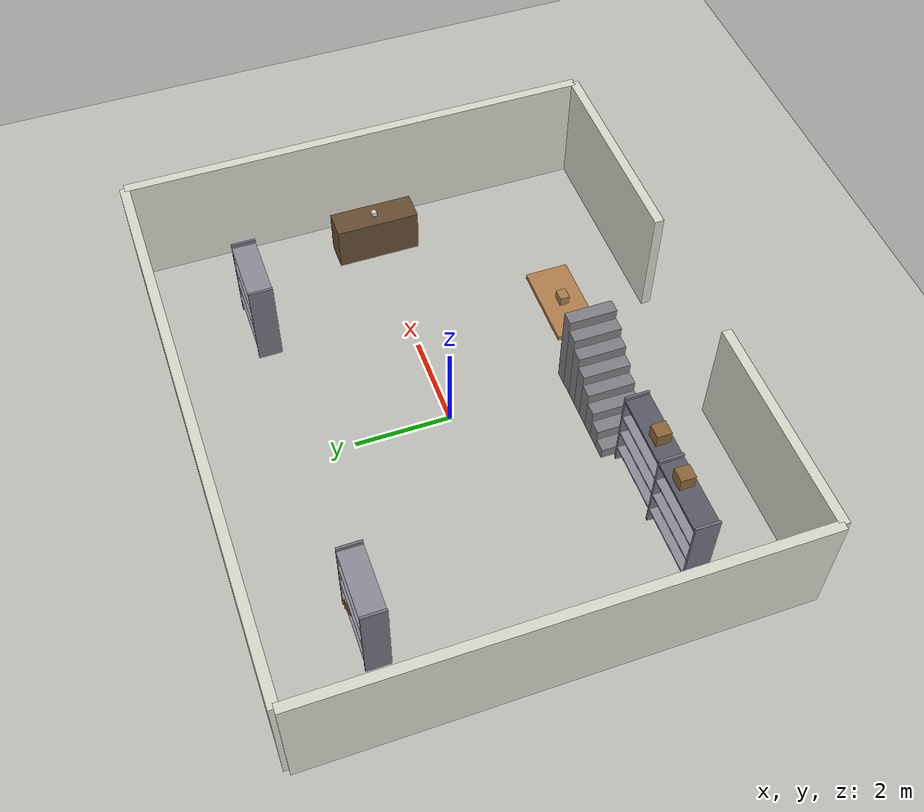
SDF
<?xml version='1.0'?>

<sdf version="1.7">
  <world name="store_inventory">

    <!-- ── Physics ─────────────────────────────────────────────────── -->
    <physics name="default_physics" type="dart">
      <max_step_size>0.001</max_step_size>
      <real_time_factor>1</real_time_factor>
      <real_time_update_rate>1000</real_time_update_rate>
    </physics>

    <plugin name="gz::sim::systems::Physics"          filename="ignition-gazebo-physics-system"/>
    <plugin name="gz::sim::systems::UserCommands"     filename="ignition-gazebo-user-commands-system"/>
    <plugin name="gz::sim::systems::SceneBroadcaster" filename="ignition-gazebo-scene-broadcaster-system"/>
    <plugin name="gz::sim::systems::Contact"          filename="ignition-gazebo-contact-system"/>

    <gravity>0 0 -9.8</gravity>
    <atmosphere type="adiabatic"/>

    <!-- ── Scene ───────────────────────────────────────────────────── -->
    <scene>
      <ambient>0.6 0.6 0.6 1</ambient>
      <background>0.85 0.85 0.85 1</background>
      <shadows>false</shadows>
    </scene>

    <!-- ── Sun / indoor light ─────────────────────────────────────── -->
    <light name="sun" type="directional">
      <cast_shadows>false</cast_shadows>
      <pose>0 0 10 0 0 0</pose>
      <diffuse>1 1 1 1</diffuse>
      <specular>0.2 0.2 0.2 1</specular>
      <direction>-0.5 0.5 -1</direction>
    </light>

    <!-- ═══════════════════════════════════════════════════════════════
         FLOOR
    ═══════════════════════════════════════════════════════════════════ -->
    <model name="ground">
      <static>true</static>
      <link name="link">
        <collision name="collision">
          <geometry>
            <plane><normal>0 0 1</normal><size>100 100</size></plane>
          </geometry>
          <surface>
            <friction><ode><mu>1.0</mu><mu2>1.0</mu2></ode></friction>
            <contact><ode><min_depth>0.001</min_depth></ode></contact>
          </surface>
        </collision>
        <visual name="visual">
          <geometry>
            <plane><normal>0 0 1</normal><size>12 10</size></plane>
          </geometry>
          <material>
            <ambient>0.75 0.75 0.72 1</ambient>
            <diffuse>0.75 0.75 0.72 1</diffuse>
          </material>
        </visual>
      </link>
    </model>

    <model name="wall_back">
      <static>true</static>
      <pose>0 5 1.25 0 0 0</pose>
      <link name="link">
        <collision name="collision"><geometry><box><size>12 0.2 2.5</size></box></geometry></collision>
        <visual name="visual">
          <geometry><box><size>12 0.2 2.5</size></box></geometry>
          <material><ambient>0.85 0.85 0.8 1</ambient><diffuse>0.85 0.85 0.8 1</diffuse></material>
        </visual>
      </link>
    </model>

    <model name="wall_left">
      <static>true</static>
      <pose>-6 0 1.25 0 0 0</pose>
      <link name="link">
        <collision name="collision"><geometry><box><size>0.2 10 2.5</size></box></geometry></collision>
        <visual name="visual">
          <geometry><box><size>0.2 10 2.5</size></box></geometry>
          <material><ambient>0.85 0.85 0.8 1</ambient><diffuse>0.85 0.85 0.8 1</diffuse></material>
        </visual>
      </link>
    </model>

    <model name="wall_right">
      <static>true</static>
      <pose>6 0 1.25 0 0 0</pose>
      <link name="link">
        <collision name="collision"><geometry><box><size>0.2 10 2.5</size></box></geometry></collision>
        <visual name="visual">
          <geometry><box><size>0.2 10 2.5</size></box></geometry>
          <material><ambient>0.85 0.85 0.8 1</ambient><diffuse>0.85 0.85 0.8 1</diffuse></material>
        </visual>
      </link>
    </model>

    <!-- front wall, split around a 3 m wide doorway at x∈[-1.5,1.5] -->
    <model name="wall_front_left">
      <static>true</static>
      <pose>-3.75 -5 1.25 0 0 0</pose>
      <link name="link">
        <collision name="collision"><geometry><box><size>4.5 0.2 2.5</size></box></geometry></collision>
        <visual name="visual">
          <geometry><box><size>4.5 0.2 2.5</size></box></geometry>
          <material><ambient>0.85 0.85 0.8 1</ambient><diffuse>0.85 0.85 0.8 1</diffuse></material>
        </visual>
      </link>
    </model>

    <model name="wall_front_right">
      <static>true</static>
      <pose>3.75 -5 1.25 0 0 0</pose>
      <link name="link">
        <collision name="collision"><geometry><box><size>4.5 0.2 2.5</size></box></geometry></collision>
        <visual name="visual">
          <geometry><box><size>4.5 0.2 2.5</size></box></geometry>
          <material><ambient>0.85 0.85 0.8 1</ambient><diffuse>0.85 0.85 0.8 1</diffuse></material>
        </visual>
      </link>
    </model>

    <model name="shelf_C">
      <static>true</static>
      <pose>0 0 0 0 0 0</pose>
      <link name="post_L">
        <pose>-4.7 3 1.0 0 0 0</pose>
        <collision name="collision"><geometry><box><size>0.05 0.5 2.0</size></box></geometry></collision>
        <visual name="visual">
          <geometry><box><size>0.05 0.5 2.0</size></box></geometry>
          <material><ambient>0.45 0.45 0.5 1</ambient><diffuse>0.45 0.45 0.5 1</diffuse></material>
        </visual>
      </link>
      <link name="post_R">
        <pose>-3.3 3 1.0 0 0 0</pose>
        <collision name="collision"><geometry><box><size>0.05 0.5 2.0</size></box></geometry></collision>
        <visual name="visual">
          <geometry><box><size>0.05 0.5 2.0</size></box></geometry>
          <material><ambient>0.45 0.45 0.5 1</ambient><diffuse>0.45 0.45 0.5 1</diffuse></material>
        </visual>
      </link>
      <link name="board_1">
        <pose>-4 3 0.4 0 0 0</pose>
        <collision name="collision"><geometry><box><size>1.4 0.5 0.04</size></box></geometry></collision>
        <visual name="visual">
          <geometry><box><size>1.4 0.5 0.04</size></box></geometry>
          <material><ambient>0.55 0.55 0.6 1</ambient><diffuse>0.55 0.55 0.6 1</diffuse></material>
        </visual>
      </link>
      <link name="board_2">
        <pose>-4 3 0.9 0 0 0</pose>
        <collision name="collision"><geometry><box><size>1.4 0.5 0.04</size></box></geometry></collision>
        <visual name="visual">
          <geometry><box><size>1.4 0.5 0.04</size></box></geometry>
          <material><ambient>0.55 0.55 0.6 1</ambient><diffuse>0.55 0.55 0.6 1</diffuse></material>
        </visual>
      </link>
      <link name="board_3">
        <pose>-4 3 1.4 0 0 0</pose>
        <collision name="collision"><geometry><box><size>1.4 0.5 0.04</size></box></geometry></collision>
        <visual name="visual">
          <geometry><box><size>1.4 0.5 0.04</size></box></geometry>
          <material><ambient>0.55 0.55 0.6 1</ambient><diffuse>0.55 0.55 0.6 1</diffuse></material>
        </visual>
      </link>
      <link name="board_4">
        <pose>-4 3 1.9 0 0 0</pose>
        <collision name="collision"><geometry><box><size>1.4 0.5 0.04</size></box></geometry></collision>
        <visual name="visual">
          <geometry><box><size>1.4 0.5 0.04</size></box></geometry>
          <material><ambient>0.55 0.55 0.6 1</ambient><diffuse>0.55 0.55 0.6 1</diffuse></material>
        </visual>
      </link>
    </model>

    <model name="shelf_A">
      <static>true</static>
      <pose>0 0 0 0 0 0</pose>
      <link name="post_L">
        <pose>2.8 3 1.0 0 0 0</pose>
        <collision name="collision"><geometry><box><size>0.05 0.5 2.0</size></box></geometry></collision>
        <visual name="visual">
          <geometry><box><size>0.05 0.5 2.0</size></box></geometry>
          <material><ambient>0.45 0.45 0.5 1</ambient><diffuse>0.45 0.45 0.5 1</diffuse></material>
        </visual>
      </link>
      <link name="post_R">
        <pose>4.2 3 1.0 0 0 0</pose>
        <collision name="collision"><geometry><box><size>0.05 0.5 2.0</size></box></geometry></collision>
        <visual name="visual">
          <geometry><box><size>0.05 0.5 2.0</size></box></geometry>
          <material><ambient>0.45 0.45 0.5 1</ambient><diffuse>0.45 0.45 0.5 1</diffuse></material>
        </visual>
      </link>
      <link name="board_1">
        <pose>3.5 3 0.4 0 0 0</pose>
        <collision name="collision"><geometry><box><size>1.4 0.5 0.04</size></box></geometry></collision>
        <visual name="visual">
          <geometry><box><size>1.4 0.5 0.04</size></box></geometry>
          <material><ambient>0.55 0.55 0.6 1</ambient><diffuse>0.55 0.55 0.6 1</diffuse></material>
        </visual>
      </link>
      <link name="board_2">
        <pose>3.5 3 0.9 0 0 0</pose>
        <collision name="collision"><geometry><box><size>1.4 0.5 0.04</size></box></geometry></collision>
        <visual name="visual">
          <geometry><box><size>1.4 0.5 0.04</size></box></geometry>
          <material><ambient>0.55 0.55 0.6 1</ambient><diffuse>0.55 0.55 0.6 1</diffuse></material>
        </visual>
      </link>
      <link name="board_3">
        <pose>3.5 3 1.4 0 0 0</pose>
        <collision name="collision"><geometry><box><size>1.4 0.5 0.04</size></box></geometry></collision>
        <visual name="visual">
          <geometry><box><size>1.4 0.5 0.04</size></box></geometry>
          <material><ambient>0.55 0.55 0.6 1</ambient><diffuse>0.55 0.55 0.6 1</diffuse></material>
        </visual>
      </link>
      <link name="board_4">
        <pose>3.5 3 1.9 0 0 0</pose>
        <collision name="collision"><geometry><box><size>1.4 0.5 0.04</size></box></geometry></collision>
        <visual name="visual">
          <geometry><box><size>1.4 0.5 0.04</size></box></geometry>
          <material><ambient>0.55 0.55 0.6 1</ambient><diffuse>0.55 0.55 0.6 1</diffuse></material>
        </visual>
      </link>
    </model>

    <!-- ═══════════════════════════════════════════════════════════════
         COUNTER D  — checkout / packing hand-off counter
    ═══════════════════════════════════════════════════════════════════ -->
    <model name="counter_D">
      <static>true</static>
      <pose>5 0 0.5 0 0 0</pose>
      <link name="link">
        <collision name="collision"><geometry><box><size>0.6 1.8 1.0</size></box></geometry></collision>
        <visual name="visual">
          <geometry><box><size>0.6 1.8 1.0</size></box></geometry>
          <material><ambient>0.4 0.3 0.2 1</ambient><diffuse>0.4 0.3 0.2 1</diffuse></material>
        </visual>
      </link>
    </model>

    <model name="shelf_B">
      <static>true</static>
      <pose>0 0 0 0 0 0</pose>
      <link name="post_L">
        <pose>-5.0 -3 1.0 0 0 0</pose>
        <collision name="collision"><geometry><box><size>0.05 0.5 2.0</size></box></geometry></collision>
        <visual name="visual">
          <geometry><box><size>0.05 0.5 2.0</size></box></geometry>
          <material><ambient>0.45 0.45 0.5 1</ambient><diffuse>0.45 0.45 0.5 1</diffuse></material>
        </visual>
      </link>
      <link name="post_M">
        <pose>-3.5 -3 1.0 0 0 0</pose>
        <collision name="collision"><geometry><box><size>0.05 0.5 2.0</size></box></geometry></collision>
        <visual name="visual">
          <geometry><box><size>0.05 0.5 2.0</size></box></geometry>
          <material><ambient>0.45 0.45 0.5 1</ambient><diffuse>0.45 0.45 0.5 1</diffuse></material>
        </visual>
      </link>
      <link name="post_R">
        <pose>-2.0 -3 1.0 0 0 0</pose>
        <collision name="collision"><geometry><box><size>0.05 0.5 2.0</size></box></geometry></collision>
        <visual name="visual">
          <geometry><box><size>0.05 0.5 2.0</size></box></geometry>
          <material><ambient>0.45 0.45 0.5 1</ambient><diffuse>0.45 0.45 0.5 1</diffuse></material>
        </visual>
      </link>
      <link name="board_1">
        <pose>-3.5 -3 0.4 0 0 0</pose>
        <collision name="collision"><geometry><box><size>3.0 0.5 0.04</size></box></geometry></collision>
        <visual name="visual">
          <geometry><box><size>3.0 0.5 0.04</size></box></geometry>
          <material><ambient>0.55 0.55 0.6 1</ambient><diffuse>0.55 0.55 0.6 1</diffuse></material>
        </visual>
      </link>
      <link name="board_2">
        <pose>-3.5 -3 0.9 0 0 0</pose>
        <collision name="collision"><geometry><box><size>3.0 0.5 0.04</size></box></geometry></collision>
        <visual name="visual">
          <geometry><box><size>3.0 0.5 0.04</size></box></geometry>
          <material><ambient>0.55 0.55 0.6 1</ambient><diffuse>0.55 0.55 0.6 1</diffuse></material>
        </visual>
      </link>
      <link name="board_3">
        <pose>-3.5 -3 1.4 0 0 0</pose>
        <collision name="collision"><geometry><box><size>3.0 0.5 0.04</size></box></geometry></collision>
        <visual name="visual">
          <geometry><box><size>3.0 0.5 0.04</size></box></geometry>
          <material><ambient>0.55 0.55 0.6 1</ambient><diffuse>0.55 0.55 0.6 1</diffuse></material>
        </visual>
      </link>
      <!-- top (heavy) shelf, reinforced colour to signal load rating -->
      <link name="board_4">
        <pose>-3.5 -3 1.9 0 0 0</pose>
        <collision name="collision"><geometry><box><size>3.0 0.5 0.06</size></box></geometry></collision>
        <visual name="visual">
          <geometry><box><size>3.0 0.5 0.06</size></box></geometry>
          <material><ambient>0.35 0.35 0.4 1</ambient><diffuse>0.35 0.35 0.4 1</diffuse></material>
        </visual>
      </link>
    </model>

    <model name="stairs_B">
      <static>true</static>
      <pose>0 0 0 0 0 0</pose>
      <link name="step_1">
        <pose>-1.76 -3 0.12 0 0 0</pose>
        <collision name="collision"><geometry><box><size>0.28 1.0 0.24</size></box></geometry></collision>
        <visual name="visual">
          <geometry><box><size>0.28 1.0 0.24</size></box></geometry>
          <material><ambient>0.5 0.5 0.52 1</ambient><diffuse>0.5 0.5 0.52 1</diffuse></material>
        </visual>
      </link>
      <link name="step_2">
        <pose>-1.48 -3 0.24 0 0 0</pose>
        <collision name="collision"><geometry><box><size>0.28 1.0 0.48</size></box></geometry></collision>
        <visual name="visual">
          <geometry><box><size>0.28 1.0 0.48</size></box></geometry>
          <material><ambient>0.5 0.5 0.52 1</ambient><diffuse>0.5 0.5 0.52 1</diffuse></material>
        </visual>
      </link>
      <link name="step_3">
        <pose>-1.20 -3 0.36 0 0 0</pose>
        <collision name="collision"><geometry><box><size>0.28 1.0 0.72</size></box></geometry></collision>
        <visual name="visual">
          <geometry><box><size>0.28 1.0 0.72</size></box></geometry>
          <material><ambient>0.5 0.5 0.52 1</ambient><diffuse>0.5 0.5 0.52 1</diffuse></material>
        </visual>
      </link>
      <link name="step_4">
        <pose>-0.92 -3 0.48 0 0 0</pose>
        <collision name="collision"><geometry><box><size>0.28 1.0 0.96</size></box></geometry></collision>
        <visual name="visual">
          <geometry><box><size>0.28 1.0 0.96</size></box></geometry>
          <material><ambient>0.5 0.5 0.52 1</ambient><diffuse>0.5 0.5 0.52 1</diffuse></material>
        </visual>
      </link>
      <link name="step_5">
        <pose>-0.64 -3 0.60 0 0 0</pose>
        <collision name="collision"><geometry><box><size>0.28 1.0 1.20</size></box></geometry></collision>
        <visual name="visual">
          <geometry><box><size>0.28 1.0 1.20</size></box></geometry>
          <material><ambient>0.5 0.5 0.52 1</ambient><diffuse>0.5 0.5 0.52 1</diffuse></material>
        </visual>
      </link>
      <link name="step_6">
        <pose>-0.36 -3 0.72 0 0 0</pose>
        <collision name="collision"><geometry><box><size>0.28 1.0 1.44</size></box></geometry></collision>
        <visual name="visual">
          <geometry><box><size>0.28 1.0 1.44</size></box></geometry>
          <material><ambient>0.5 0.5 0.52 1</ambient><diffuse>0.5 0.5 0.52 1</diffuse></material>
        </visual>
      </link>
      <link name="step_7">
        <pose>-0.08 -3 0.84 0 0 0</pose>
        <collision name="collision"><geometry><box><size>0.28 1.0 1.68</size></box></geometry></collision>
        <visual name="visual">
          <geometry><box><size>0.28 1.0 1.68</size></box></geometry>
          <material><ambient>0.5 0.5 0.52 1</ambient><diffuse>0.5 0.5 0.52 1</diffuse></material>
        </visual>
      </link>
      <link name="step_8">
        <pose>0.20 -3 0.96 0 0 0</pose>
        <collision name="collision"><geometry><box><size>0.28 1.0 1.92</size></box></geometry></collision>
        <visual name="visual">
          <geometry><box><size>0.28 1.0 1.92</size></box></geometry>
          <material><ambient>0.5 0.5 0.52 1</ambient><diffuse>0.5 0.5 0.52 1</diffuse></material>
        </visual>
      </link>
    </model>

    <!-- ═══════════════════════════════════════════════════════════════
         PACKING DESK S
    ═══════════════════════════════════════════════════════════════════ -->
    <model name="desk_S">
      <static>true</static>
      <pose>1.5 -3 0.80 0 0 0</pose>
      <link name="link">
        <collision name="collision"><geometry><box><size>1.8 0.9 0.10</size></box></geometry></collision>
        <visual name="visual">
          <geometry><box><size>1.8 0.9 0.10</size></box></geometry>
          <material><ambient>0.7 0.5 0.3 1</ambient><diffuse>0.7 0.5 0.3 1</diffuse></material>
        </visual>
      </link>
    </model>

    <!-- Shelf A — small parcels Tiago can pick, board_1 (z=0.46) and board_2 (z=0.96) -->
    <model name="small_item_1">
      <pose>3.2 2.9 0.46 0 0 0</pose>
      <link name="link">
        <inertial>
          <mass>0.2</mass>
          <inertia><ixx>0.000213</ixx><iyy>0.000213</iyy><izz>0.000213</izz><ixy>0</ixy><ixz>0</ixz><iyz>0</iyz></inertia>
        </inertial>
        <collision name="collision"><geometry><box><size>0.08 0.08 0.08</size></box></geometry></collision>
        <visual name="visual">
          <geometry><box><size>0.08 0.08 0.08</size></box></geometry>
          <material><ambient>0.2 0.4 0.8 1</ambient><diffuse>0.2 0.4 0.8 1</diffuse></material>
        </visual>
      </link>
    </model>

    <model name="small_item_2">
      <pose>3.5 3.1 0.46 0 0 0</pose>
      <link name="link">
        <inertial>
          <mass>0.2</mass>
          <inertia><ixx>0.000213</ixx><iyy>0.000213</iyy><izz>0.000213</izz><ixy>0</ixy><ixz>0</ixz><iyz>0</iyz></inertia>
        </inertial>
        <collision name="collision"><geometry><box><size>0.08 0.08 0.08</size></box></geometry></collision>
        <visual name="visual">
          <geometry><box><size>0.08 0.08 0.08</size></box></geometry>
          <material><ambient>0.8 0.2 0.2 1</ambient><diffuse>0.8 0.2 0.2 1</diffuse></material>
        </visual>
      </link>
    </model>

    <model name="small_item_3">
      <pose>3.8 2.85 0.96 0 0 0</pose>
      <link name="link">
        <inertial>
          <mass>0.2</mass>
          <inertia><ixx>0.000213</ixx><iyy>0.000213</iyy><izz>0.000213</izz><ixy>0</ixy><ixz>0</ixz><iyz>0</iyz></inertia>
        </inertial>
        <collision name="collision"><geometry><box><size>0.08 0.08 0.08</size></box></geometry></collision>
        <visual name="visual">
          <geometry><box><size>0.08 0.08 0.08</size></box></geometry>
          <material><ambient>0.2 0.7 0.3 1</ambient><diffuse>0.2 0.7 0.3 1</diffuse></material>
        </visual>
      </link>
    </model>

    <model name="small_item_4">
      <pose>3.3 3.15 0.96 0 0 0</pose>
      <link name="link">
        <inertial>
          <mass>0.2</mass>
          <inertia><ixx>0.000213</ixx><iyy>0.000213</iyy><izz>0.000213</izz><ixy>0</ixy><ixz>0</ixz><iyz>0</iyz></inertia>
        </inertial>
        <collision name="collision"><geometry><box><size>0.08 0.08 0.08</size></box></geometry></collision>
        <visual name="visual">
          <geometry><box><size>0.08 0.08 0.08</size></box></geometry>
          <material><ambient>0.9 0.8 0.1 1</ambient><diffuse>0.9 0.8 0.1 1</diffuse></material>
        </visual>
      </link>
    </model>

    <!-- Shelf C — heavy boxes at floor level, Pioneer-transportable, board_1 top=0.42 -->
    <model name="heavy_box_C1">
      <pose>-4.25 2.9 0.57 0 0 0</pose>
      <link name="link">
        <inertial>
          <mass>12</mass>
          <inertia><ixx>0.2125</ixx><iyy>0.25</iyy><izz>0.2825</izz><ixy>0</ixy><ixz>0</ixz><iyz>0</iyz></inertia>
        </inertial>
        <collision name="collision"><geometry><box><size>0.4 0.35 0.3</size></box></geometry></collision>
        <visual name="visual">
          <geometry><box><size>0.4 0.35 0.3</size></box></geometry>
          <material><ambient>0.5 0.35 0.2 1</ambient><diffuse>0.5 0.35 0.2 1</diffuse></material>
        </visual>
      </link>
    </model>

    <model name="heavy_box_C2">
      <pose>-3.75 3.05 0.57 0 0 0.3</pose>
      <link name="link">
        <inertial>
          <mass>12</mass>
          <inertia><ixx>0.2125</ixx><iyy>0.25</iyy><izz>0.2825</izz><ixy>0</ixy><ixz>0</ixz><iyz>0</iyz></inertia>
        </inertial>
        <collision name="collision"><geometry><box><size>0.4 0.35 0.3</size></box></geometry></collision>
        <visual name="visual">
          <geometry><box><size>0.4 0.35 0.3</size></box></geometry>
          <material><ambient>0.5 0.35 0.2 1</ambient><diffuse>0.5 0.35 0.2 1</diffuse></material>
        </visual>
      </link>
    </model>

    <!-- Shelf B — heavy boxes on the TOP shelf only (board_4 top=1.92), stairs required -->
    <model name="heavy_box_B1">
      <pose>-4.0 -3 2.07 0 0 0</pose>
      <link name="link">
        <inertial>
          <mass>6</mass>
          <inertia><ixx>0.09</ixx><iyy>0.09</iyy><izz>0.09</izz><ixy>0</ixy><ixz>0</ixz><iyz>0</iyz></inertia>
        </inertial>
        <collision name="collision"><geometry><box><size>0.3 0.3 0.3</size></box></geometry></collision>
        <visual name="visual">
          <geometry><box><size>0.3 0.3 0.3</size></box></geometry>
          <material><ambient>0.55 0.4 0.22 1</ambient><diffuse>0.55 0.4 0.22 1</diffuse></material>
        </visual>
      </link>
    </model>

    <model name="heavy_box_B2">
      <pose>-3.0 -3 2.07 0 0 0</pose>
      <link name="link">
        <inertial>
          <mass>6</mass>
          <inertia><ixx>0.09</ixx><iyy>0.09</iyy><izz>0.09</izz><ixy>0</ixy><ixz>0</ixz><iyz>0</iyz></inertia>
        </inertial>
        <collision name="collision"><geometry><box><size>0.3 0.3 0.3</size></box></geometry></collision>
        <visual name="visual">
          <geometry><box><size>0.3 0.3 0.3</size></box></geometry>
          <material><ambient>0.55 0.4 0.22 1</ambient><diffuse>0.55 0.4 0.22 1</diffuse></material>
        </visual>
      </link>
    </model>

    <!-- A package waiting at the packing desk S (top=0.85) -->
    <model name="package_on_desk">
      <pose>1.5 -3 0.95 0 0 0</pose>
      <link name="link">
        <inertial>
          <mass>1</mass>
          <inertia><ixx>0.00667</ixx><iyy>0.00854</iyy><izz>0.00854</izz><ixy>0</ixy><ixz>0</ixz><iyz>0</iyz></inertia>
        </inertial>
        <collision name="collision"><geometry><box><size>0.25 0.2 0.2</size></box></geometry></collision>
        <visual name="visual">
          <geometry><box><size>0.25 0.2 0.2</size></box></geometry>
          <material><ambient>0.65 0.5 0.3 1</ambient><diffuse>0.65 0.5 0.3 1</diffuse></material>
        </visual>
      </link>
    </model>

    <!-- A scanned parcel sitting on the checkout counter D (top=1.0) -->
    <model name="package_on_counter">
      <pose>5 0 1.05 0 0 0</pose>
      <link name="link">
        <inertial>
          <mass>0.3</mass>
          <inertia><ixx>0.0005</ixx><iyy>0.0005</iyy><izz>0.0005</izz><ixy>0</ixy><ixz>0</ixz><iyz>0</iyz></inertia>
        </inertial>
        <collision name="collision"><geometry><box><size>0.1 0.1 0.1</size></box></geometry></collision>
        <visual name="visual">
          <geometry><box><size>0.1 0.1 0.1</size></box></geometry>
          <material><ambient>0.9 0.9 0.85 1</ambient><diffuse>0.9 0.9 0.85 1</diffuse></material>
        </visual>
      </link>
    </model>

  </world>
</sdf>
